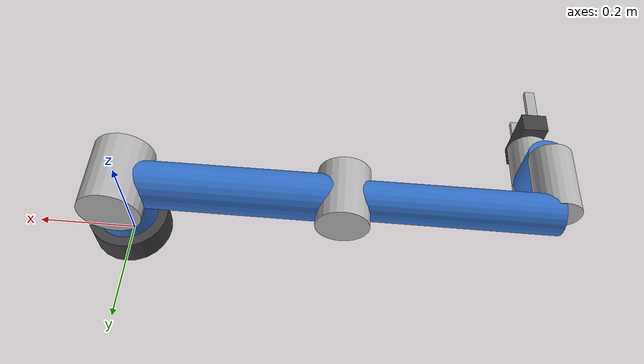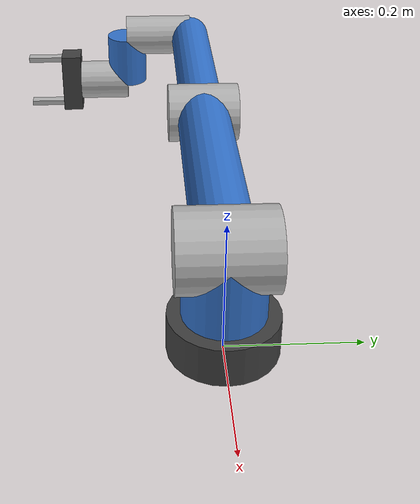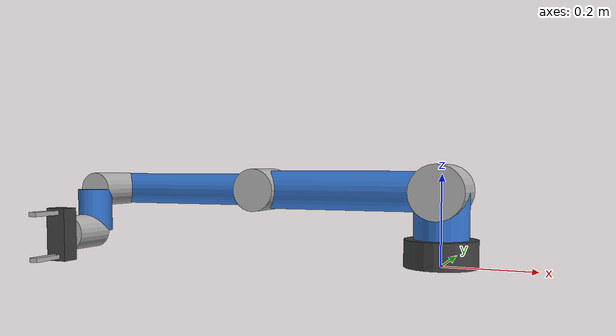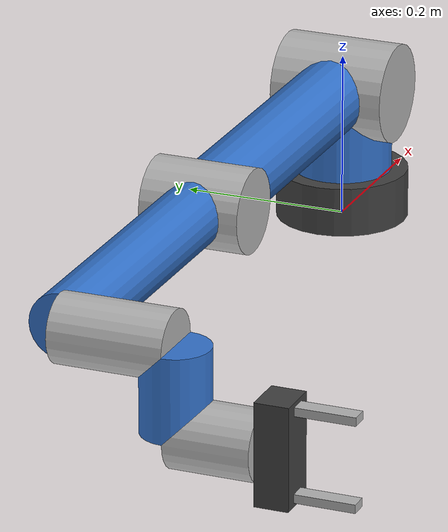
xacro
<?xml version="1.0"?>
<robot name="edu_arm" xmlns:xacro="http://www.ros.org/wiki/xacro">

  <!-- ros2_control 하드웨어: mock(기본) / gazebo / mujoco(6교시) -->
  <xacro:arg name="sim_mode" default="mock"/>

  <!-- UR5e DH 파라미터 (단위 m, rad) -->
  <xacro:property name="d1" value="0.1625"/>
  <xacro:property name="a2" value="-0.425"/>
  <xacro:property name="a3" value="-0.3922"/>
  <xacro:property name="d4" value="0.1333"/>
  <xacro:property name="d5" value="0.0997"/>
  <xacro:property name="d6" value="0.0996"/>

  <xacro:property name="big_joint_effort" value="150.0"/>
  <xacro:property name="wrist_joint_effort" value="28.0"/>
  <xacro:property name="joint_velocity" value="${pi}"/>

  <material name="blue"><color rgba="0.20 0.45 0.80 1.0"/></material>
  <material name="grey"><color rgba="0.70 0.70 0.70 1.0"/></material>
  <material name="dark"><color rgba="0.25 0.25 0.25 1.0"/></material>

  <!-- 원기둥 링크 (visual + collision + inertial) -->
  <xacro:macro name="cyl" params="radius length xyz rpy material">
    <visual>
      <origin xyz="${xyz}" rpy="${rpy}"/>
      <geometry><cylinder radius="${radius}" length="${length}"/></geometry>
      <material name="${material}"/>
    </visual>
    <collision>
      <origin xyz="${xyz}" rpy="${rpy}"/>
      <geometry><cylinder radius="${radius}" length="${length}"/></geometry>
    </collision>
  </xacro:macro>

  <xacro:macro name="inertia" params="mass xyz">
    <inertial>
      <origin xyz="${xyz}" rpy="0 0 0"/>
      <mass value="${mass}"/>
      <inertia ixx="0.01" ixy="0" ixz="0" iyy="0.01" iyz="0" izz="0.01"/>
    </inertial>
  </xacro:macro>

  <xacro:macro name="arm_joint" params="name parent child xyz rpy lower upper effort">
    <joint name="${name}" type="revolute">
      <parent link="${parent}"/>
      <child link="${child}"/>
      <origin xyz="${xyz}" rpy="${rpy}"/>
      <axis xyz="0 0 1"/>
      <limit lower="${lower}" upper="${upper}" effort="${effort}" velocity="${joint_velocity}"/>
    </joint>
  </xacro:macro>

  <!-- ============ 링크 ============ -->
  <link name="world"/>
  <joint name="world_joint" type="fixed">
    <parent link="world"/>
    <child link="base_link"/>
  </joint>

  <!-- {0}: 베이스 -->
  <link name="base_link">
    <xacro:cyl radius="0.08" length="0.06" xyz="0 0 0.03" rpy="0 0 0" material="dark"/>
    <xacro:inertia mass="4.0" xyz="0 0 0.03"/>
  </link>

  <!-- {1}: 어깨 기둥 (base -> shoulder, 높이 d1) -->
  <link name="shoulder_link">
    <xacro:cyl radius="0.06" length="${d1 - 0.06}" xyz="0 0 ${(d1 + 0.06) / 2}" rpy="0 0 0" material="blue"/>
    <xacro:inertia mass="3.7" xyz="0 0 ${d1 / 2}"/>
  </link>

  <!-- {2}: 상완 (-x 방향으로 |a2|) -->
  <link name="upper_arm_link">
    <xacro:cyl radius="0.06" length="0.14" xyz="0 0 0" rpy="0 0 0" material="grey"/>
    <xacro:cyl radius="0.045" length="${-a2}" xyz="${a2 / 2} 0 0" rpy="0 ${pi / 2} 0" material="blue"/>
    <xacro:inertia mass="8.4" xyz="${a2 / 2} 0 0"/>
  </link>

  <!-- {3}: 전완 (-x 방향으로 |a3|) -->
  <link name="forearm_link">
    <xacro:cyl radius="0.05" length="0.12" xyz="0 0 0" rpy="0 0 0" material="grey"/>
    <xacro:cyl radius="0.038" length="${-a3}" xyz="${a3 / 2} 0 0" rpy="0 ${pi / 2} 0" material="blue"/>
    <xacro:inertia mass="2.3" xyz="${a3 / 2} 0 0"/>
  </link>

  <!-- {4}: 손목1 (z 방향으로 d4) -->
  <link name="wrist_1_link">
    <xacro:cyl radius="0.04" length="${d4}" xyz="0 0 ${d4 / 2}" rpy="0 0 0" material="grey"/>
    <xacro:inertia mass="1.2" xyz="0 0 ${d4 / 2}"/>
  </link>

  <!-- {5}: 손목2 (z 방향으로 d5) -->
  <link name="wrist_2_link">
    <xacro:cyl radius="0.04" length="${d5}" xyz="0 0 ${d5 / 2}" rpy="0 0 0" material="blue"/>
    <xacro:inertia mass="1.2" xyz="0 0 ${d5 / 2}"/>
  </link>

  <!-- {6}: 손목3 / 플랜지 (z 방향으로 d6) -->
  <link name="wrist_3_link">
    <xacro:cyl radius="0.04" length="${d6}" xyz="0 0 ${d6 / 2}" rpy="0 0 0" material="grey"/>
    <xacro:inertia mass="0.2" xyz="0 0 ${d6 / 2}"/>
  </link>

  <!-- 툴 플랜지 좌표계 (DH 끝단) -->
  <link name="tool0"/>

  <!-- ============ 관절 (UR5e DH) ============ -->
  <!-- joint i 의 origin = 링크 {i-1}의 DH 변환: Trans(a_{i-1}, 0, d_{i-1}) * RotX(alpha_{i-1}) -->
  <xacro:arm_joint name="shoulder_pan_joint"  parent="base_link"      child="shoulder_link"
                   xyz="0 0 0"         rpy="0 0 0"          lower="${-2 * pi}" upper="${2 * pi}"
                   effort="${big_joint_effort}"/>
  <xacro:arm_joint name="shoulder_lift_joint" parent="shoulder_link"  child="upper_arm_link"
                   xyz="0 0 ${d1}"     rpy="${pi / 2} 0 0"  lower="${-2 * pi}" upper="${2 * pi}"
                   effort="${big_joint_effort}"/>
  <xacro:arm_joint name="elbow_joint"         parent="upper_arm_link" child="forearm_link"
                   xyz="${a2} 0 0"     rpy="0 0 0"          lower="${-pi}"     upper="${pi}"
                   effort="${big_joint_effort}"/>
  <xacro:arm_joint name="wrist_1_joint"       parent="forearm_link"   child="wrist_1_link"
                   xyz="${a3} 0 0"     rpy="0 0 0"          lower="${-2 * pi}" upper="${2 * pi}"
                   effort="${wrist_joint_effort}"/>
  <xacro:arm_joint name="wrist_2_joint"       parent="wrist_1_link"   child="wrist_2_link"
                   xyz="0 0 ${d4}"     rpy="${pi / 2} 0 0"  lower="${-2 * pi}" upper="${2 * pi}"
                   effort="${wrist_joint_effort}"/>
  <xacro:arm_joint name="wrist_3_joint"       parent="wrist_2_link"   child="wrist_3_link"
                   xyz="0 0 ${d5}"     rpy="${-pi / 2} 0 0" lower="${-2 * pi}" upper="${2 * pi}"
                   effort="${wrist_joint_effort}"/>

  <joint name="tool0_joint" type="fixed">
    <parent link="wrist_3_link"/>
    <child link="tool0"/>
    <origin xyz="0 0 ${d6}" rpy="0 0 0"/>
  </joint>

  <!-- ============ 평행 그리퍼 ============ -->
  <!-- 손가락은 tool0의 y축 방향으로 움직인다. 0.0 = 열림(명령값), 0.04 = 완전 닫힘
       하한을 0.0이 아닌 -0.005로 둔 이유: Gazebo(DART)에서 관절이 한계값에 정확히 닿으면
       속도 명령으로 다시 떨어지지 못하고 붙어 버린다 → 열림 명령(0.0)이 한계 안쪽이 되도록 여유를 둔다 -->
  <link name="gripper_base">
    <visual>
      <origin xyz="0 0 0.02" rpy="0 0 0"/>
      <geometry><box size="0.05 0.12 0.04"/></geometry>
      <material name="dark"/>
    </visual>
    <collision>
      <origin xyz="0 0 0.02" rpy="0 0 0"/>
      <geometry><box size="0.05 0.12 0.04"/></geometry>
    </collision>
    <xacro:inertia mass="0.5" xyz="0 0 0.02"/>
  </link>
  <joint name="gripper_base_joint" type="fixed">
    <parent link="tool0"/>
    <child link="gripper_base"/>
  </joint>

  <xacro:macro name="finger" params="side sign">
    <link name="${side}_finger">
      <visual>
        <origin xyz="0 0 0.035" rpy="0 0 0"/>
        <geometry><box size="0.02 0.01 0.07"/></geometry>
        <material name="grey"/>
      </visual>
      <collision>
        <origin xyz="0 0 0.035" rpy="0 0 0"/>
        <geometry><box size="0.02 0.01 0.07"/></geometry>
      </collision>
      <inertial>
        <origin xyz="0 0 0.035" rpy="0 0 0"/>
        <mass value="0.05"/>
        <inertia ixx="2.1e-5" ixy="0" ixz="0" iyy="2.2e-5" iyz="0" izz="2.1e-6"/>
      </inertial>
    </link>
  </xacro:macro>
  <xacro:finger side="left" sign="1"/>
  <xacro:finger side="right" sign="-1"/>

  <joint name="left_finger_joint" type="prismatic">
    <parent link="gripper_base"/>
    <child link="left_finger"/>
    <origin xyz="0 0.05 0.04" rpy="0 0 0"/>
    <axis xyz="0 -1 0"/>
    <limit lower="-0.005" upper="0.04" effort="100.0" velocity="0.1"/>
  </joint>
  <joint name="right_finger_joint" type="prismatic">
    <parent link="gripper_base"/>
    <child link="right_finger"/>
    <origin xyz="0 -0.05 0.04" rpy="0 0 0"/>
    <axis xyz="0 1 0"/>
    <limit lower="-0.005" upper="0.04" effort="100.0" velocity="0.1"/>
    <mimic joint="left_finger_joint" multiplier="1" offset="0"/>
  </joint>

  <!-- 그리퍼 중심점 (물체를 잡는 위치) -->
  <link name="tcp"/>
  <joint name="tcp_joint" type="fixed">
    <parent link="tool0"/>
    <child link="tcp"/>
    <origin xyz="0 0 0.10" rpy="0 0 0"/>
  </joint>

  <!-- ============ ros2_control ============ -->
  <xacro:macro name="ctrl_joint" params="name initial">
    <joint name="${name}">
      <command_interface name="position"/>
      <state_interface name="position"><param name="initial_value">${initial}</param></state_interface>
      <state_interface name="velocity"/>
    </joint>
  </xacro:macro>

  <ros2_control name="edu_arm_system" type="system">
    <hardware>
      <xacro:if value="${'$(arg sim_mode)' == 'mock'}">
        <plugin>mock_components/GenericSystem</plugin>
      </xacro:if>
      <xacro:if value="${'$(arg sim_mode)' == 'gazebo'}">
        <plugin>gz_ros2_control/GazeboSimSystem</plugin>
      </xacro:if>
      <xacro:if value="${'$(arg sim_mode)' == 'mujoco'}">
        <plugin>mujoco_ros2_control/MujocoSystemInterface</plugin>
      </xacro:if>
    </hardware>
    <!-- 초기 자세: 팔을 접은 ready 자세 -->
    <xacro:ctrl_joint name="shoulder_pan_joint"  initial="0.0"/>
    <xacro:ctrl_joint name="shoulder_lift_joint" initial="-1.5708"/>
    <xacro:ctrl_joint name="elbow_joint"         initial="1.5708"/>
    <xacro:ctrl_joint name="wrist_1_joint"       initial="-1.5708"/>
    <xacro:ctrl_joint name="wrist_2_joint"       initial="-1.5708"/>
    <xacro:ctrl_joint name="wrist_3_joint"       initial="0.0"/>
    <xacro:ctrl_joint name="left_finger_joint"   initial="0.0"/>
  </ros2_control>

  <!-- ============ Gazebo (sim_mode:=gazebo) ============ -->
  <xacro:if value="${'$(arg sim_mode)' == 'gazebo'}">
    <gazebo>
      <plugin filename="gz_ros2_control-system" name="gz_ros2_control::GazeboSimROS2ControlPlugin">
        <parameters>$(find edu_arm_description)/config/ros2_controllers.yaml</parameters>
      </plugin>
    </gazebo>
  </xacro:if>

</robot>
